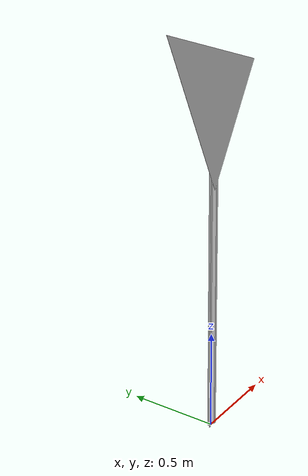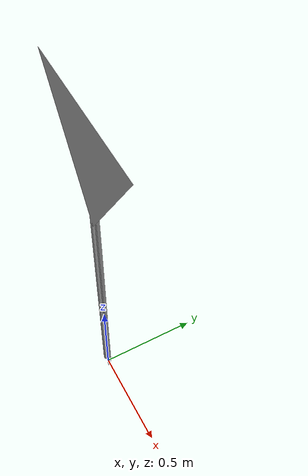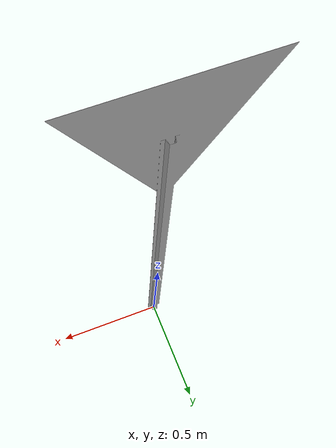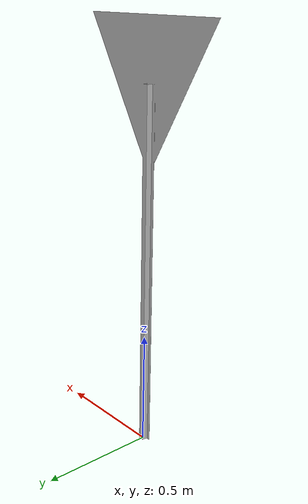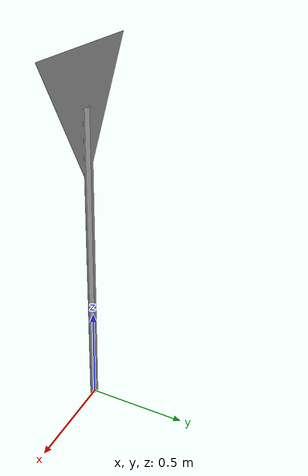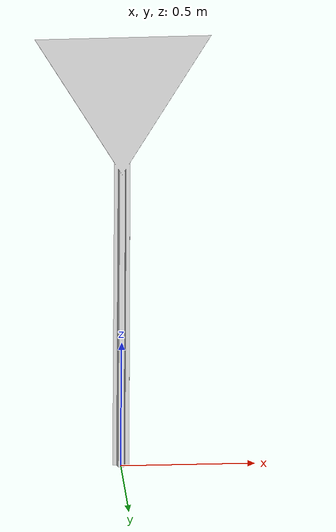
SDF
<?xml version="1.0" ?>
<sdf version="1.5">
  <model name="way_sign">
    <static>true</static>
    <link name="link">
      <collision name="collision">
        <geometry>
          <mesh>
            <uri>model://way_sign/meshes/way_sign.dae</uri>
          </mesh>
        </geometry>
      </collision>
      <visual name="visual">
        <geometry>
          <mesh>
            <uri>model://way_sign/meshes/way_sign.dae</uri>
          </mesh>
        </geometry>
        <material>
          <script>
            <uri>model://way_sign/materials/scripts</uri>
            <uri>model://way_sign/materials/textures</uri>
            <name>WaySign/Diffuse</name>
          </script>
        </material>
      </visual>
    </link>
  </model>
</sdf>
